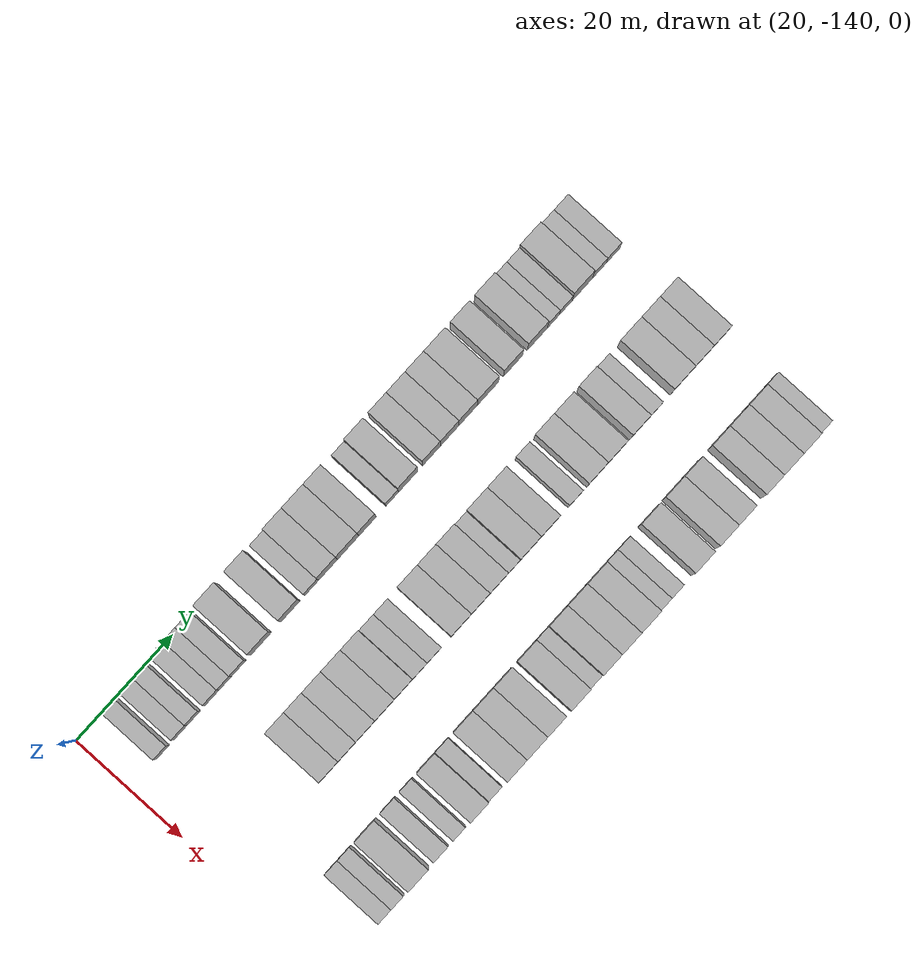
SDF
<sdf version="1.6">
 <world name="default">
  <model name="building_22">
   <static>1</static>
   <pose>25.0000 -132.9320 0 0.000000 0.000000 0.000000</pose>
   <link name="link">
    <pose>0 0 3.00 0 0 0</pose>
    <collision name="collision"><geometry><box><size>10.0000 2.6404 6.0000</size></box></geometry></collision>
    <visual name="visual">
     <cast_shadows>0</cast_shadows>
     <geometry><box><size>10.0000 2.6404 6.0000</size></box></geometry>
     <material>
      <script>
       <uri>model://HANNAS_wall/materials/scripts</uri>
       <uri>model://HANNAS_wall/materials/textures</uri>
       <name>vrc/HANNAS_wall</name>
      </script>
     </material>
    </visual>
   </link>
  </model>
  <model name="building_23">
   <static>1</static>
   <pose>25.0000 -129.2268 0 0.000000 0.000000 0.000000</pose>
   <link name="link">
    <pose>0 0 3.00 0 0 0</pose>
    <collision name="collision"><geometry><box><size>10.0000 2.7701 6.0000</size></box></geometry></collision>
    <visual name="visual">
     <cast_shadows>0</cast_shadows>
     <geometry><box><size>10.0000 2.7701 6.0000</size></box></geometry>
     <material>
      <script>
       <uri>model://HANNAS_wall/materials/scripts</uri>
       <uri>model://HANNAS_wall/materials/textures</uri>
       <name>vrc/HANNAS_wall</name>
      </script>
     </material>
    </visual>
   </link>
  </model>
  <model name="building_24">
   <static>1</static>
   <pose>25.0000 -126.5125 0 0.000000 0.000000 0.000000</pose>
   <link name="link">
    <pose>0 0 3.00 0 0 0</pose>
    <collision name="collision"><geometry><box><size>10.0000 2.6585 6.0000</size></box></geometry></collision>
    <visual name="visual">
     <cast_shadows>0</cast_shadows>
     <geometry><box><size>10.0000 2.6585 6.0000</size></box></geometry>
     <material>
      <script>
       <uri>model://HANNAS_wall/materials/scripts</uri>
       <uri>model://HANNAS_wall/materials/textures</uri>
       <name>vrc/HANNAS_wall</name>
      </script>
     </material>
    </visual>
   </link>
  </model>
  <model name="building_25">
   <static>1</static>
   <pose>25.0000 -122.7348 0 0.000000 0.000000 0.000000</pose>
   <link name="link">
    <pose>0 0 3.00 0 0 0</pose>
    <collision name="collision"><geometry><box><size>10.0000 2.8971 6.0000</size></box></geometry></collision>
    <visual name="visual">
     <cast_shadows>0</cast_shadows>
     <geometry><box><size>10.0000 2.8971 6.0000</size></box></geometry>
     <material>
      <script>
       <uri>model://HANNAS_wall/materials/scripts</uri>
       <uri>model://HANNAS_wall/materials/textures</uri>
       <name>vrc/HANNAS_wall</name>
      </script>
     </material>
    </visual>
   </link>
  </model>
  <model name="building_26">
   <static>1</static>
   <pose>25.0000 -120.0177 0 0.000000 0.000000 0.000000</pose>
   <link name="link">
    <pose>0 0 3.00 0 0 0</pose>
    <collision name="collision"><geometry><box><size>10.0000 2.5370 6.0000</size></box></geometry></collision>
    <visual name="visual">
     <cast_shadows>0</cast_shadows>
     <geometry><box><size>10.0000 2.5370 6.0000</size></box></geometry>
     <material>
      <script>
       <uri>model://HANNAS_wall/materials/scripts</uri>
       <uri>model://HANNAS_wall/materials/textures</uri>
       <name>vrc/HANNAS_wall</name>
      </script>
     </material>
    </visual>
   </link>
  </model>
  <model name="building_27">
   <static>1</static>
   <pose>25.0000 -117.2631 0 0.000000 0.000000 0.000000</pose>
   <link name="link">
    <pose>0 0 3.00 0 0 0</pose>
    <collision name="collision"><geometry><box><size>10.0000 2.9722 6.0000</size></box></geometry></collision>
    <visual name="visual">
     <cast_shadows>0</cast_shadows>
     <geometry><box><size>10.0000 2.9722 6.0000</size></box></geometry>
     <material>
      <script>
       <uri>model://HANNAS_wall/materials/scripts</uri>
       <uri>model://HANNAS_wall/materials/textures</uri>
       <name>vrc/HANNAS_wall</name>
      </script>
     </material>
    </visual>
   </link>
  </model>
  <model name="building_28">
   <static>1</static>
   <pose>25.0000 -112.6516 0 0.000000 0.000000 0.000000</pose>
   <link name="link">
    <pose>0 0 4.50 0 0 0</pose>
    <collision name="collision"><geometry><box><size>10.0000 4.2508 9.0000</size></box></geometry></collision>
    <visual name="visual">
     <cast_shadows>0</cast_shadows>
     <geometry><box><size>10.0000 4.2508 9.0000</size></box></geometry>
     <material>
      <script>
       <uri>model://HANNAS_wall/materials/scripts</uri>
       <uri>model://HANNAS_wall/materials/textures</uri>
       <name>vrc/HANNAS_wall</name>
      </script>
     </material>
    </visual>
   </link>
  </model>
  <model name="building_29">
   <static>1</static>
   <pose>25.0000 -106.5607 0 0.000000 0.000000 0.000000</pose>
   <link name="link">
    <pose>0 0 4.50 0 0 0</pose>
    <collision name="collision"><geometry><box><size>10.0000 3.9310 9.0000</size></box></geometry></collision>
    <visual name="visual">
     <cast_shadows>0</cast_shadows>
     <geometry><box><size>10.0000 3.9310 9.0000</size></box></geometry>
     <material>
      <script>
       <uri>model://HANNAS_wall/materials/scripts</uri>
       <uri>model://HANNAS_wall/materials/textures</uri>
       <name>vrc/HANNAS_wall</name>
      </script>
     </material>
    </visual>
   </link>
  </model>
  <model name="building_30">
   <static>1</static>
   <pose>25.0000 -102.1648 0 0.000000 0.000000 0.000000</pose>
   <link name="link">
    <pose>0 0 3.00 0 0 0</pose>
    <collision name="collision"><geometry><box><size>10.0000 2.8607 6.0000</size></box></geometry></collision>
    <visual name="visual">
     <cast_shadows>0</cast_shadows>
     <geometry><box><size>10.0000 2.8607 6.0000</size></box></geometry>
     <material>
      <script>
       <uri>model://HANNAS_wall/materials/scripts</uri>
       <uri>model://HANNAS_wall/materials/textures</uri>
       <name>vrc/HANNAS_wall</name>
      </script>
     </material>
    </visual>
   </link>
  </model>
  <model name="building_31">
   <static>1</static>
   <pose>25.0000 -98.7727 0 0.000000 0.000000 0.000000</pose>
   <link name="link">
    <pose>0 0 4.50 0 0 0</pose>
    <collision name="collision"><geometry><box><size>10.0000 3.9235 9.0000</size></box></geometry></collision>
    <visual name="visual">
     <cast_shadows>0</cast_shadows>
     <geometry><box><size>10.0000 3.9235 9.0000</size></box></geometry>
     <material>
      <script>
       <uri>model://HANNAS_wall/materials/scripts</uri>
       <uri>model://HANNAS_wall/materials/textures</uri>
       <name>vrc/HANNAS_wall</name>
      </script>
     </material>
    </visual>
   </link>
  </model>
  <model name="building_32">
   <static>1</static>
   <pose>25.0000 -94.6060 0 0.000000 0.000000 0.000000</pose>
   <link name="link">
    <pose>0 0 4.50 0 0 0</pose>
    <collision name="collision"><geometry><box><size>10.0000 4.4098 9.0000</size></box></geometry></collision>
    <visual name="visual">
     <cast_shadows>0</cast_shadows>
     <geometry><box><size>10.0000 4.4098 9.0000</size></box></geometry>
     <material>
      <script>
       <uri>model://HANNAS_wall/materials/scripts</uri>
       <uri>model://HANNAS_wall/materials/textures</uri>
       <name>vrc/HANNAS_wall</name>
      </script>
     </material>
    </visual>
   </link>
  </model>
  <model name="building_33">
   <static>1</static>
   <pose>25.0000 -90.6006 0 0.000000 0.000000 0.000000</pose>
   <link name="link">
    <pose>0 0 4.50 0 0 0</pose>
    <collision name="collision"><geometry><box><size>10.0000 3.6011 9.0000</size></box></geometry></collision>
    <visual name="visual">
     <cast_shadows>0</cast_shadows>
     <geometry><box><size>10.0000 3.6011 9.0000</size></box></geometry>
     <material>
      <script>
       <uri>model://HANNAS_wall/materials/scripts</uri>
       <uri>model://HANNAS_wall/materials/textures</uri>
       <name>vrc/HANNAS_wall</name>
      </script>
     </material>
    </visual>
   </link>
  </model>
  <model name="building_34">
   <static>1</static>
   <pose>25.0000 -85.4847 0 0.000000 0.000000 0.000000</pose>
   <link name="link">
    <pose>0 0 3.00 0 0 0</pose>
    <collision name="collision"><geometry><box><size>10.0000 2.6308 6.0000</size></box></geometry></collision>
    <visual name="visual">
     <cast_shadows>0</cast_shadows>
     <geometry><box><size>10.0000 2.6308 6.0000</size></box></geometry>
     <material>
      <script>
       <uri>model://HANNAS_wall/materials/scripts</uri>
       <uri>model://HANNAS_wall/materials/textures</uri>
       <name>vrc/HANNAS_wall</name>
      </script>
     </material>
    </visual>
   </link>
  </model>
  <model name="building_35">
   <static>1</static>
   <pose>25.0000 -82.1748 0 0.000000 0.000000 0.000000</pose>
   <link name="link">
    <pose>0 0 4.50 0 0 0</pose>
    <collision name="collision"><geometry><box><size>10.0000 3.9889 9.0000</size></box></geometry></collision>
    <visual name="visual">
     <cast_shadows>0</cast_shadows>
     <geometry><box><size>10.0000 3.9889 9.0000</size></box></geometry>
     <material>
      <script>
       <uri>model://HANNAS_wall/materials/scripts</uri>
       <uri>model://HANNAS_wall/materials/textures</uri>
       <name>vrc/HANNAS_wall</name>
      </script>
     </material>
    </visual>
   </link>
  </model>
  <model name="building_36">
   <static>1</static>
   <pose>25.0000 -77.3158 0 0.000000 0.000000 0.000000</pose>
   <link name="link">
    <pose>0 0 4.50 0 0 0</pose>
    <collision name="collision"><geometry><box><size>10.0000 3.7293 9.0000</size></box></geometry></collision>
    <visual name="visual">
     <cast_shadows>0</cast_shadows>
     <geometry><box><size>10.0000 3.7293 9.0000</size></box></geometry>
     <material>
      <script>
       <uri>model://HANNAS_wall/materials/scripts</uri>
       <uri>model://HANNAS_wall/materials/textures</uri>
       <name>vrc/HANNAS_wall</name>
      </script>
     </material>
    </visual>
   </link>
  </model>
  <model name="building_37">
   <static>1</static>
   <pose>25.0000 -73.5388 0 0.000000 0.000000 0.000000</pose>
   <link name="link">
    <pose>0 0 4.50 0 0 0</pose>
    <collision name="collision"><geometry><box><size>10.0000 3.8247 9.0000</size></box></geometry></collision>
    <visual name="visual">
     <cast_shadows>0</cast_shadows>
     <geometry><box><size>10.0000 3.8247 9.0000</size></box></geometry>
     <material>
      <script>
       <uri>model://HANNAS_wall/materials/scripts</uri>
       <uri>model://HANNAS_wall/materials/textures</uri>
       <name>vrc/HANNAS_wall</name>
      </script>
     </material>
    </visual>
   </link>
  </model>
  <model name="building_38">
   <static>1</static>
   <pose>25.0000 -69.7189 0 0.000000 0.000000 0.000000</pose>
   <link name="link">
    <pose>0 0 4.50 0 0 0</pose>
    <collision name="collision"><geometry><box><size>10.0000 3.8150 9.0000</size></box></geometry></collision>
    <visual name="visual">
     <cast_shadows>0</cast_shadows>
     <geometry><box><size>10.0000 3.8150 9.0000</size></box></geometry>
     <material>
      <script>
       <uri>model://HANNAS_wall/materials/scripts</uri>
       <uri>model://HANNAS_wall/materials/textures</uri>
       <name>vrc/HANNAS_wall</name>
      </script>
     </material>
    </visual>
   </link>
  </model>
  <model name="building_39">
   <static>1</static>
   <pose>25.0000 -65.6132 0 0.000000 0.000000 0.000000</pose>
   <link name="link">
    <pose>0 0 4.50 0 0 0</pose>
    <collision name="collision"><geometry><box><size>10.0000 4.3964 9.0000</size></box></geometry></collision>
    <visual name="visual">
     <cast_shadows>0</cast_shadows>
     <geometry><box><size>10.0000 4.3964 9.0000</size></box></geometry>
     <material>
      <script>
       <uri>model://HANNAS_wall/materials/scripts</uri>
       <uri>model://HANNAS_wall/materials/textures</uri>
       <name>vrc/HANNAS_wall</name>
      </script>
     </material>
    </visual>
   </link>
  </model>
  <model name="building_40">
   <static>1</static>
   <pose>25.0000 -60.4220 0 0.000000 0.000000 0.000000</pose>
   <link name="link">
    <pose>0 0 4.50 0 0 0</pose>
    <collision name="collision"><geometry><box><size>10.0000 3.9860 9.0000</size></box></geometry></collision>
    <visual name="visual">
     <cast_shadows>0</cast_shadows>
     <geometry><box><size>10.0000 3.9860 9.0000</size></box></geometry>
     <material>
      <script>
       <uri>model://HANNAS_wall/materials/scripts</uri>
       <uri>model://HANNAS_wall/materials/textures</uri>
       <name>vrc/HANNAS_wall</name>
      </script>
     </material>
    </visual>
   </link>
  </model>
  <model name="building_41">
   <static>1</static>
   <pose>25.0000 -55.3377 0 0.000000 0.000000 0.000000</pose>
   <link name="link">
    <pose>0 0 4.50 0 0 0</pose>
    <collision name="collision"><geometry><box><size>10.0000 4.1826 9.0000</size></box></geometry></collision>
    <visual name="visual">
     <cast_shadows>0</cast_shadows>
     <geometry><box><size>10.0000 4.1826 9.0000</size></box></geometry>
     <material>
      <script>
       <uri>model://HANNAS_wall/materials/scripts</uri>
       <uri>model://HANNAS_wall/materials/textures</uri>
       <name>vrc/HANNAS_wall</name>
      </script>
     </material>
    </visual>
   </link>
  </model>
  <model name="building_42">
   <static>1</static>
   <pose>25.0000 -52.0034 0 0.000000 0.000000 0.000000</pose>
   <link name="link">
    <pose>0 0 3.00 0 0 0</pose>
    <collision name="collision"><geometry><box><size>10.0000 2.4860 6.0000</size></box></geometry></collision>
    <visual name="visual">
     <cast_shadows>0</cast_shadows>
     <geometry><box><size>10.0000 2.4860 6.0000</size></box></geometry>
     <material>
      <script>
       <uri>model://HANNAS_wall/materials/scripts</uri>
       <uri>model://HANNAS_wall/materials/textures</uri>
       <name>vrc/HANNAS_wall</name>
      </script>
     </material>
    </visual>
   </link>
  </model>
  <model name="building_43">
   <static>1</static>
   <pose>25.0000 -49.4311 0 0.000000 0.000000 0.000000</pose>
   <link name="link">
    <pose>0 0 3.00 0 0 0</pose>
    <collision name="collision"><geometry><box><size>10.0000 2.6586 6.0000</size></box></geometry></collision>
    <visual name="visual">
     <cast_shadows>0</cast_shadows>
     <geometry><box><size>10.0000 2.6586 6.0000</size></box></geometry>
     <material>
      <script>
       <uri>model://HANNAS_wall/materials/scripts</uri>
       <uri>model://HANNAS_wall/materials/textures</uri>
       <name>vrc/HANNAS_wall</name>
      </script>
     </material>
    </visual>
   </link>
  </model>
  <model name="building_44">
   <static>1</static>
   <pose>25.0000 -45.9772 0 0.000000 0.000000 0.000000</pose>
   <link name="link">
    <pose>0 0 4.50 0 0 0</pose>
    <collision name="collision"><geometry><box><size>10.0000 4.2492 9.0000</size></box></geometry></collision>
    <visual name="visual">
     <cast_shadows>0</cast_shadows>
     <geometry><box><size>10.0000 4.2492 9.0000</size></box></geometry>
     <material>
      <script>
       <uri>model://HANNAS_wall/materials/scripts</uri>
       <uri>model://HANNAS_wall/materials/textures</uri>
       <name>vrc/HANNAS_wall</name>
      </script>
     </material>
    </visual>
   </link>
  </model>
  <model name="building_45">
   <static>1</static>
   <pose>25.0000 -42.4300 0 0.000000 0.000000 0.000000</pose>
   <link name="link">
    <pose>0 0 3.00 0 0 0</pose>
    <collision name="collision"><geometry><box><size>10.0000 2.8452 6.0000</size></box></geometry></collision>
    <visual name="visual">
     <cast_shadows>0</cast_shadows>
     <geometry><box><size>10.0000 2.8452 6.0000</size></box></geometry>
     <material>
      <script>
       <uri>model://HANNAS_wall/materials/scripts</uri>
       <uri>model://HANNAS_wall/materials/textures</uri>
       <name>vrc/HANNAS_wall</name>
      </script>
     </material>
    </visual>
   </link>
  </model>
  <model name="building_46">
   <static>1</static>
   <pose>25.0000 -39.5504 0 0.000000 0.000000 0.000000</pose>
   <link name="link">
    <pose>0 0 3.00 0 0 0</pose>
    <collision name="collision"><geometry><box><size>10.0000 2.9141 6.0000</size></box></geometry></collision>
    <visual name="visual">
     <cast_shadows>0</cast_shadows>
     <geometry><box><size>10.0000 2.9141 6.0000</size></box></geometry>
     <material>
      <script>
       <uri>model://HANNAS_wall/materials/scripts</uri>
       <uri>model://HANNAS_wall/materials/textures</uri>
       <name>vrc/HANNAS_wall</name>
      </script>
     </material>
    </visual>
   </link>
  </model>
  <model name="building_142">
   <static>1</static>
   <pose>44.0000 -119.1701 0 0.000000 0.000000 0.000000</pose>
   <link name="link">
    <pose>0 0 4.50 0 0 0</pose>
    <collision name="collision"><geometry><box><size>10.0000 3.8583 9.0000</size></box></geometry></collision>
    <visual name="visual">
     <cast_shadows>0</cast_shadows>
     <geometry><box><size>10.0000 3.8583 9.0000</size></box></geometry>
     <material>
      <script>
       <uri>model://HANNAS_wall/materials/scripts</uri>
       <uri>model://HANNAS_wall/materials/textures</uri>
       <name>vrc/HANNAS_wall</name>
      </script>
     </material>
    </visual>
   </link>
  </model>
  <model name="building_143">
   <static>1</static>
   <pose>44.0000 -115.4315 0 0.000000 0.000000 0.000000</pose>
   <link name="link">
    <pose>0 0 4.50 0 0 0</pose>
    <collision name="collision"><geometry><box><size>10.0000 3.6190 9.0000</size></box></geometry></collision>
    <visual name="visual">
     <cast_shadows>0</cast_shadows>
     <geometry><box><size>10.0000 3.6190 9.0000</size></box></geometry>
     <material>
      <script>
       <uri>model://HANNAS_wall/materials/scripts</uri>
       <uri>model://HANNAS_wall/materials/textures</uri>
       <name>vrc/HANNAS_wall</name>
      </script>
     </material>
    </visual>
   </link>
  </model>
  <model name="building_144">
   <static>1</static>
   <pose>44.0000 -111.6917 0 0.000000 0.000000 0.000000</pose>
   <link name="link">
    <pose>0 0 4.50 0 0 0</pose>
    <collision name="collision"><geometry><box><size>10.0000 3.8605 9.0000</size></box></geometry></collision>
    <visual name="visual">
     <cast_shadows>0</cast_shadows>
     <geometry><box><size>10.0000 3.8605 9.0000</size></box></geometry>
     <material>
      <script>
       <uri>model://HANNAS_wall/materials/scripts</uri>
       <uri>model://HANNAS_wall/materials/textures</uri>
       <name>vrc/HANNAS_wall</name>
      </script>
     </material>
    </visual>
   </link>
  </model>
  <model name="building_145">
   <static>1</static>
   <pose>44.0000 -107.7535 0 0.000000 0.000000 0.000000</pose>
   <link name="link">
    <pose>0 0 4.50 0 0 0</pose>
    <collision name="collision"><geometry><box><size>10.0000 4.0160 9.0000</size></box></geometry></collision>
    <visual name="visual">
     <cast_shadows>0</cast_shadows>
     <geometry><box><size>10.0000 4.0160 9.0000</size></box></geometry>
     <material>
      <script>
       <uri>model://HANNAS_wall/materials/scripts</uri>
       <uri>model://HANNAS_wall/materials/textures</uri>
       <name>vrc/HANNAS_wall</name>
      </script>
     </material>
    </visual>
   </link>
  </model>
  <model name="building_146">
   <static>1</static>
   <pose>44.0000 -103.9223 0 0.000000 0.000000 0.000000</pose>
   <link name="link">
    <pose>0 0 4.50 0 0 0</pose>
    <collision name="collision"><geometry><box><size>10.0000 3.6464 9.0000</size></box></geometry></collision>
    <visual name="visual">
     <cast_shadows>0</cast_shadows>
     <geometry><box><size>10.0000 3.6464 9.0000</size></box></geometry>
     <material>
      <script>
       <uri>model://HANNAS_wall/materials/scripts</uri>
       <uri>model://HANNAS_wall/materials/textures</uri>
       <name>vrc/HANNAS_wall</name>
      </script>
     </material>
    </visual>
   </link>
  </model>
  <model name="building_147">
   <static>1</static>
   <pose>44.0000 -100.6152 0 0.000000 0.000000 0.000000</pose>
   <link name="link">
    <pose>0 0 3.00 0 0 0</pose>
    <collision name="collision"><geometry><box><size>10.0000 2.9677 6.0000</size></box></geometry></collision>
    <visual name="visual">
     <cast_shadows>0</cast_shadows>
     <geometry><box><size>10.0000 2.9677 6.0000</size></box></geometry>
     <material>
      <script>
       <uri>model://HANNAS_wall/materials/scripts</uri>
       <uri>model://HANNAS_wall/materials/textures</uri>
       <name>vrc/HANNAS_wall</name>
      </script>
     </material>
    </visual>
   </link>
  </model>
  <model name="building_148">
   <static>1</static>
   <pose>44.0000 -97.6734 0 0.000000 0.000000 0.000000</pose>
   <link name="link">
    <pose>0 0 3.00 0 0 0</pose>
    <collision name="collision"><geometry><box><size>10.0000 2.9159 6.0000</size></box></geometry></collision>
    <visual name="visual">
     <cast_shadows>0</cast_shadows>
     <geometry><box><size>10.0000 2.9159 6.0000</size></box></geometry>
     <material>
      <script>
       <uri>model://HANNAS_wall/materials/scripts</uri>
       <uri>model://HANNAS_wall/materials/textures</uri>
       <name>vrc/HANNAS_wall</name>
      </script>
     </material>
    </visual>
   </link>
  </model>
  <model name="building_149">
   <static>1</static>
   <pose>44.0000 -92.1470 0 0.000000 0.000000 0.000000</pose>
   <link name="link">
    <pose>0 0 4.50 0 0 0</pose>
    <collision name="collision"><geometry><box><size>10.0000 4.1369 9.0000</size></box></geometry></collision>
    <visual name="visual">
     <cast_shadows>0</cast_shadows>
     <geometry><box><size>10.0000 4.1369 9.0000</size></box></geometry>
     <material>
      <script>
       <uri>model://HANNAS_wall/materials/scripts</uri>
       <uri>model://HANNAS_wall/materials/textures</uri>
       <name>vrc/HANNAS_wall</name>
      </script>
     </material>
    </visual>
   </link>
  </model>
  <model name="building_150">
   <static>1</static>
   <pose>44.0000 -88.1755 0 0.000000 0.000000 0.000000</pose>
   <link name="link">
    <pose>0 0 4.50 0 0 0</pose>
    <collision name="collision"><geometry><box><size>10.0000 3.8061 9.0000</size></box></geometry></collision>
    <visual name="visual">
     <cast_shadows>0</cast_shadows>
     <geometry><box><size>10.0000 3.8061 9.0000</size></box></geometry>
     <material>
      <script>
       <uri>model://HANNAS_wall/materials/scripts</uri>
       <uri>model://HANNAS_wall/materials/textures</uri>
       <name>vrc/HANNAS_wall</name>
      </script>
     </material>
    </visual>
   </link>
  </model>
  <model name="building_151">
   <static>1</static>
   <pose>44.0000 -84.3957 0 0.000000 0.000000 0.000000</pose>
   <link name="link">
    <pose>0 0 4.50 0 0 0</pose>
    <collision name="collision"><geometry><box><size>10.0000 3.7534 9.0000</size></box></geometry></collision>
    <visual name="visual">
     <cast_shadows>0</cast_shadows>
     <geometry><box><size>10.0000 3.7534 9.0000</size></box></geometry>
     <material>
      <script>
       <uri>model://HANNAS_wall/materials/scripts</uri>
       <uri>model://HANNAS_wall/materials/textures</uri>
       <name>vrc/HANNAS_wall</name>
      </script>
     </material>
    </visual>
   </link>
  </model>
  <model name="building_152">
   <static>1</static>
   <pose>44.0000 -81.2618 0 0.000000 0.000000 0.000000</pose>
   <link name="link">
    <pose>0 0 3.00 0 0 0</pose>
    <collision name="collision"><geometry><box><size>10.0000 2.5145 6.0000</size></box></geometry></collision>
    <visual name="visual">
     <cast_shadows>0</cast_shadows>
     <geometry><box><size>10.0000 2.5145 6.0000</size></box></geometry>
     <material>
      <script>
       <uri>model://HANNAS_wall/materials/scripts</uri>
       <uri>model://HANNAS_wall/materials/textures</uri>
       <name>vrc/HANNAS_wall</name>
      </script>
     </material>
    </visual>
   </link>
  </model>
  <model name="building_153">
   <static>1</static>
   <pose>44.0000 -77.8986 0 0.000000 0.000000 0.000000</pose>
   <link name="link">
    <pose>0 0 4.50 0 0 0</pose>
    <collision name="collision"><geometry><box><size>10.0000 4.2119 9.0000</size></box></geometry></collision>
    <visual name="visual">
     <cast_shadows>0</cast_shadows>
     <geometry><box><size>10.0000 4.2119 9.0000</size></box></geometry>
     <material>
      <script>
       <uri>model://HANNAS_wall/materials/scripts</uri>
       <uri>model://HANNAS_wall/materials/textures</uri>
       <name>vrc/HANNAS_wall</name>
      </script>
     </material>
    </visual>
   </link>
  </model>
  <model name="building_154">
   <static>1</static>
   <pose>44.0000 -73.8440 0 0.000000 0.000000 0.000000</pose>
   <link name="link">
    <pose>0 0 4.50 0 0 0</pose>
    <collision name="collision"><geometry><box><size>10.0000 3.8972 9.0000</size></box></geometry></collision>
    <visual name="visual">
     <cast_shadows>0</cast_shadows>
     <geometry><box><size>10.0000 3.8972 9.0000</size></box></geometry>
     <material>
      <script>
       <uri>model://HANNAS_wall/materials/scripts</uri>
       <uri>model://HANNAS_wall/materials/textures</uri>
       <name>vrc/HANNAS_wall</name>
      </script>
     </material>
    </visual>
   </link>
  </model>
  <model name="building_155">
   <static>1</static>
   <pose>44.0000 -68.4730 0 0.000000 0.000000 0.000000</pose>
   <link name="link">
    <pose>0 0 3.00 0 0 0</pose>
    <collision name="collision"><geometry><box><size>10.0000 2.8447 6.0000</size></box></geometry></collision>
    <visual name="visual">
     <cast_shadows>0</cast_shadows>
     <geometry><box><size>10.0000 2.8447 6.0000</size></box></geometry>
     <material>
      <script>
       <uri>model://HANNAS_wall/materials/scripts</uri>
       <uri>model://HANNAS_wall/materials/textures</uri>
       <name>vrc/HANNAS_wall</name>
      </script>
     </material>
    </visual>
   </link>
  </model>
  <model name="building_156">
   <static>1</static>
   <pose>44.0000 -64.0850 0 0.000000 0.000000 0.000000</pose>
   <link name="link">
    <pose>0 0 4.50 0 0 0</pose>
    <collision name="collision"><geometry><box><size>10.0000 3.9313 9.0000</size></box></geometry></collision>
    <visual name="visual">
     <cast_shadows>0</cast_shadows>
     <geometry><box><size>10.0000 3.9313 9.0000</size></box></geometry>
     <material>
      <script>
       <uri>model://HANNAS_wall/materials/scripts</uri>
       <uri>model://HANNAS_wall/materials/textures</uri>
       <name>vrc/HANNAS_wall</name>
      </script>
     </material>
    </visual>
   </link>
  </model>
  <model name="building_157">
   <static>1</static>
   <pose>44.0000 -60.1149 0 0.000000 0.000000 0.000000</pose>
   <link name="link">
    <pose>0 0 4.50 0 0 0</pose>
    <collision name="collision"><geometry><box><size>10.0000 4.0088 9.0000</size></box></geometry></collision>
    <visual name="visual">
     <cast_shadows>0</cast_shadows>
     <geometry><box><size>10.0000 4.0088 9.0000</size></box></geometry>
     <material>
      <script>
       <uri>model://HANNAS_wall/materials/scripts</uri>
       <uri>model://HANNAS_wall/materials/textures</uri>
       <name>vrc/HANNAS_wall</name>
      </script>
     </material>
    </visual>
   </link>
  </model>
  <model name="building_158">
   <static>1</static>
   <pose>44.0000 -55.2548 0 0.000000 0.000000 0.000000</pose>
   <link name="link">
    <pose>0 0 4.50 0 0 0</pose>
    <collision name="collision"><geometry><box><size>10.0000 3.7113 9.0000</size></box></geometry></collision>
    <visual name="visual">
     <cast_shadows>0</cast_shadows>
     <geometry><box><size>10.0000 3.7113 9.0000</size></box></geometry>
     <material>
      <script>
       <uri>model://HANNAS_wall/materials/scripts</uri>
       <uri>model://HANNAS_wall/materials/textures</uri>
       <name>vrc/HANNAS_wall</name>
      </script>
     </material>
    </visual>
   </link>
  </model>
  <model name="building_159">
   <static>1</static>
   <pose>44.0000 -52.0135 0 0.000000 0.000000 0.000000</pose>
   <link name="link">
    <pose>0 0 3.00 0 0 0</pose>
    <collision name="collision"><geometry><box><size>10.0000 2.7713 6.0000</size></box></geometry></collision>
    <visual name="visual">
     <cast_shadows>0</cast_shadows>
     <geometry><box><size>10.0000 2.7713 6.0000</size></box></geometry>
     <material>
      <script>
       <uri>model://HANNAS_wall/materials/scripts</uri>
       <uri>model://HANNAS_wall/materials/textures</uri>
       <name>vrc/HANNAS_wall</name>
      </script>
     </material>
    </visual>
   </link>
  </model>
  <model name="building_160">
   <static>1</static>
   <pose>44.0000 -46.4480 0 0.000000 0.000000 0.000000</pose>
   <link name="link">
    <pose>0 0 4.50 0 0 0</pose>
    <collision name="collision"><geometry><box><size>10.0000 4.3597 9.0000</size></box></geometry></collision>
    <visual name="visual">
     <cast_shadows>0</cast_shadows>
     <geometry><box><size>10.0000 4.3597 9.0000</size></box></geometry>
     <material>
      <script>
       <uri>model://HANNAS_wall/materials/scripts</uri>
       <uri>model://HANNAS_wall/materials/textures</uri>
       <name>vrc/HANNAS_wall</name>
      </script>
     </material>
    </visual>
   </link>
  </model>
  <model name="building_161">
   <static>1</static>
   <pose>44.0000 -42.3795 0 0.000000 0.000000 0.000000</pose>
   <link name="link">
    <pose>0 0 4.50 0 0 0</pose>
    <collision name="collision"><geometry><box><size>10.0000 3.7773 9.0000</size></box></geometry></collision>
    <visual name="visual">
     <cast_shadows>0</cast_shadows>
     <geometry><box><size>10.0000 3.7773 9.0000</size></box></geometry>
     <material>
      <script>
       <uri>model://HANNAS_wall/materials/scripts</uri>
       <uri>model://HANNAS_wall/materials/textures</uri>
       <name>vrc/HANNAS_wall</name>
      </script>
     </material>
    </visual>
   </link>
  </model>
  <model name="building_162">
   <static>1</static>
   <pose>44.0000 -38.6741 0 0.000000 0.000000 0.000000</pose>
   <link name="link">
    <pose>0 0 4.50 0 0 0</pose>
    <collision name="collision"><geometry><box><size>10.0000 3.6334 9.0000</size></box></geometry></collision>
    <visual name="visual">
     <cast_shadows>0</cast_shadows>
     <geometry><box><size>10.0000 3.6334 9.0000</size></box></geometry>
     <material>
      <script>
       <uri>model://HANNAS_wall/materials/scripts</uri>
       <uri>model://HANNAS_wall/materials/textures</uri>
       <name>vrc/HANNAS_wall</name>
      </script>
     </material>
    </visual>
   </link>
  </model>
  <model name="building_258">
   <static>1</static>
   <pose>63.0000 -128.8015 0 0.000000 0.000000 0.000000</pose>
   <link name="link">
    <pose>0 0 3.00 0 0 0</pose>
    <collision name="collision"><geometry><box><size>10.0000 2.6761 6.0000</size></box></geometry></collision>
    <visual name="visual">
     <cast_shadows>0</cast_shadows>
     <geometry><box><size>10.0000 2.6761 6.0000</size></box></geometry>
     <material>
      <script>
       <uri>model://HANNAS_wall/materials/scripts</uri>
       <uri>model://HANNAS_wall/materials/textures</uri>
       <name>vrc/HANNAS_wall</name>
      </script>
     </material>
    </visual>
   </link>
  </model>
  <model name="building_259">
   <static>1</static>
   <pose>63.0000 -126.2078 0 0.000000 0.000000 0.000000</pose>
   <link name="link">
    <pose>0 0 3.00 0 0 0</pose>
    <collision name="collision"><geometry><box><size>10.0000 2.5111 6.0000</size></box></geometry></collision>
    <visual name="visual">
     <cast_shadows>0</cast_shadows>
     <geometry><box><size>10.0000 2.5111 6.0000</size></box></geometry>
     <material>
      <script>
       <uri>model://HANNAS_wall/materials/scripts</uri>
       <uri>model://HANNAS_wall/materials/textures</uri>
       <name>vrc/HANNAS_wall</name>
      </script>
     </material>
    </visual>
   </link>
  </model>
  <model name="building_260">
   <static>1</static>
   <pose>63.0000 -121.8820 0 0.000000 0.000000 0.000000</pose>
   <link name="link">
    <pose>0 0 4.50 0 0 0</pose>
    <collision name="collision"><geometry><box><size>10.0000 4.1406 9.0000</size></box></geometry></collision>
    <visual name="visual">
     <cast_shadows>0</cast_shadows>
     <geometry><box><size>10.0000 4.1406 9.0000</size></box></geometry>
     <material>
      <script>
       <uri>model://HANNAS_wall/materials/scripts</uri>
       <uri>model://HANNAS_wall/materials/textures</uri>
       <name>vrc/HANNAS_wall</name>
      </script>
     </material>
    </visual>
   </link>
  </model>
  <model name="building_261">
   <static>1</static>
   <pose>63.0000 -117.3207 0 0.000000 0.000000 0.000000</pose>
   <link name="link">
    <pose>0 0 3.00 0 0 0</pose>
    <collision name="collision"><geometry><box><size>10.0000 2.9820 6.0000</size></box></geometry></collision>
    <visual name="visual">
     <cast_shadows>0</cast_shadows>
     <geometry><box><size>10.0000 2.9820 6.0000</size></box></geometry>
     <material>
      <script>
       <uri>model://HANNAS_wall/materials/scripts</uri>
       <uri>model://HANNAS_wall/materials/textures</uri>
       <name>vrc/HANNAS_wall</name>
      </script>
     </material>
    </visual>
   </link>
  </model>
  <model name="building_262">
   <static>1</static>
   <pose>63.0000 -113.5526 0 0.000000 0.000000 0.000000</pose>
   <link name="link">
    <pose>0 0 3.00 0 0 0</pose>
    <collision name="collision"><geometry><box><size>10.0000 2.5543 6.0000</size></box></geometry></collision>
    <visual name="visual">
     <cast_shadows>0</cast_shadows>
     <geometry><box><size>10.0000 2.5543 6.0000</size></box></geometry>
     <material>
      <script>
       <uri>model://HANNAS_wall/materials/scripts</uri>
       <uri>model://HANNAS_wall/materials/textures</uri>
       <name>vrc/HANNAS_wall</name>
      </script>
     </material>
    </visual>
   </link>
  </model>
  <model name="building_263">
   <static>1</static>
   <pose>63.0000 -109.3965 0 0.000000 0.000000 0.000000</pose>
   <link name="link">
    <pose>0 0 4.50 0 0 0</pose>
    <collision name="collision"><geometry><box><size>10.0000 3.7579 9.0000</size></box></geometry></collision>
    <visual name="visual">
     <cast_shadows>0</cast_shadows>
     <geometry><box><size>10.0000 3.7579 9.0000</size></box></geometry>
     <material>
      <script>
       <uri>model://HANNAS_wall/materials/scripts</uri>
       <uri>model://HANNAS_wall/materials/textures</uri>
       <name>vrc/HANNAS_wall</name>
      </script>
     </material>
    </visual>
   </link>
  </model>
  <model name="building_264">
   <static>1</static>
   <pose>63.0000 -106.1515 0 0.000000 0.000000 0.000000</pose>
   <link name="link">
    <pose>0 0 3.00 0 0 0</pose>
    <collision name="collision"><geometry><box><size>10.0000 2.7320 6.0000</size></box></geometry></collision>
    <visual name="visual">
     <cast_shadows>0</cast_shadows>
     <geometry><box><size>10.0000 2.7320 6.0000</size></box></geometry>
     <material>
      <script>
       <uri>model://HANNAS_wall/materials/scripts</uri>
       <uri>model://HANNAS_wall/materials/textures</uri>
       <name>vrc/HANNAS_wall</name>
      </script>
     </material>
    </visual>
   </link>
  </model>
  <model name="building_265">
   <static>1</static>
   <pose>63.0000 -101.7500 0 0.000000 0.000000 0.000000</pose>
   <link name="link">
    <pose>0 0 4.50 0 0 0</pose>
    <collision name="collision"><geometry><box><size>10.0000 4.0712 9.0000</size></box></geometry></collision>
    <visual name="visual">
     <cast_shadows>0</cast_shadows>
     <geometry><box><size>10.0000 4.0712 9.0000</size></box></geometry>
     <material>
      <script>
       <uri>model://HANNAS_wall/materials/scripts</uri>
       <uri>model://HANNAS_wall/materials/textures</uri>
       <name>vrc/HANNAS_wall</name>
      </script>
     </material>
    </visual>
   </link>
  </model>
  <model name="building_266">
   <static>1</static>
   <pose>63.0000 -97.6245 0 0.000000 0.000000 0.000000</pose>
   <link name="link">
    <pose>0 0 4.50 0 0 0</pose>
    <collision name="collision"><geometry><box><size>10.0000 4.1798 9.0000</size></box></geometry></collision>
    <visual name="visual">
     <cast_shadows>0</cast_shadows>
     <geometry><box><size>10.0000 4.1798 9.0000</size></box></geometry>
     <material>
      <script>
       <uri>model://HANNAS_wall/materials/scripts</uri>
       <uri>model://HANNAS_wall/materials/textures</uri>
       <name>vrc/HANNAS_wall</name>
      </script>
     </material>
    </visual>
   </link>
  </model>
  <model name="building_267">
   <static>1</static>
   <pose>63.0000 -93.6269 0 0.000000 0.000000 0.000000</pose>
   <link name="link">
    <pose>0 0 4.50 0 0 0</pose>
    <collision name="collision"><geometry><box><size>10.0000 3.8154 9.0000</size></box></geometry></collision>
    <visual name="visual">
     <cast_shadows>0</cast_shadows>
     <geometry><box><size>10.0000 3.8154 9.0000</size></box></geometry>
     <material>
      <script>
       <uri>model://HANNAS_wall/materials/scripts</uri>
       <uri>model://HANNAS_wall/materials/textures</uri>
       <name>vrc/HANNAS_wall</name>
      </script>
     </material>
    </visual>
   </link>
  </model>
  <model name="building_268">
   <static>1</static>
   <pose>63.0000 -88.7117 0 0.000000 0.000000 0.000000</pose>
   <link name="link">
    <pose>0 0 4.50 0 0 0</pose>
    <collision name="collision"><geometry><box><size>10.0000 4.0148 9.0000</size></box></geometry></collision>
    <visual name="visual">
     <cast_shadows>0</cast_shadows>
     <geometry><box><size>10.0000 4.0148 9.0000</size></box></geometry>
     <material>
      <script>
       <uri>model://HANNAS_wall/materials/scripts</uri>
       <uri>model://HANNAS_wall/materials/textures</uri>
       <name>vrc/HANNAS_wall</name>
      </script>
     </material>
    </visual>
   </link>
  </model>
  <model name="building_269">
   <static>1</static>
   <pose>63.0000 -85.4565 0 0.000000 0.000000 0.000000</pose>
   <link name="link">
    <pose>0 0 3.00 0 0 0</pose>
    <collision name="collision"><geometry><box><size>10.0000 2.4957 6.0000</size></box></geometry></collision>
    <visual name="visual">
     <cast_shadows>0</cast_shadows>
     <geometry><box><size>10.0000 2.4957 6.0000</size></box></geometry>
     <material>
      <script>
       <uri>model://HANNAS_wall/materials/scripts</uri>
       <uri>model://HANNAS_wall/materials/textures</uri>
       <name>vrc/HANNAS_wall</name>
      </script>
     </material>
    </visual>
   </link>
  </model>
  <model name="building_270">
   <static>1</static>
   <pose>63.0000 -82.2836 0 0.000000 0.000000 0.000000</pose>
   <link name="link">
    <pose>0 0 4.50 0 0 0</pose>
    <collision name="collision"><geometry><box><size>10.0000 3.8500 9.0000</size></box></geometry></collision>
    <visual name="visual">
     <cast_shadows>0</cast_shadows>
     <geometry><box><size>10.0000 3.8500 9.0000</size></box></geometry>
     <material>
      <script>
       <uri>model://HANNAS_wall/materials/scripts</uri>
       <uri>model://HANNAS_wall/materials/textures</uri>
       <name>vrc/HANNAS_wall</name>
      </script>
     </material>
    </visual>
   </link>
  </model>
  <model name="building_271">
   <static>1</static>
   <pose>63.0000 -78.3593 0 0.000000 0.000000 0.000000</pose>
   <link name="link">
    <pose>0 0 4.50 0 0 0</pose>
    <collision name="collision"><geometry><box><size>10.0000 3.9987 9.0000</size></box></geometry></collision>
    <visual name="visual">
     <cast_shadows>0</cast_shadows>
     <geometry><box><size>10.0000 3.9987 9.0000</size></box></geometry>
     <material>
      <script>
       <uri>model://HANNAS_wall/materials/scripts</uri>
       <uri>model://HANNAS_wall/materials/textures</uri>
       <name>vrc/HANNAS_wall</name>
      </script>
     </material>
    </visual>
   </link>
  </model>
  <model name="building_272">
   <static>1</static>
   <pose>63.0000 -74.3497 0 0.000000 0.000000 0.000000</pose>
   <link name="link">
    <pose>0 0 4.50 0 0 0</pose>
    <collision name="collision"><geometry><box><size>10.0000 4.0205 9.0000</size></box></geometry></collision>
    <visual name="visual">
     <cast_shadows>0</cast_shadows>
     <geometry><box><size>10.0000 4.0205 9.0000</size></box></geometry>
     <material>
      <script>
       <uri>model://HANNAS_wall/materials/scripts</uri>
       <uri>model://HANNAS_wall/materials/textures</uri>
       <name>vrc/HANNAS_wall</name>
      </script>
     </material>
    </visual>
   </link>
  </model>
  <model name="building_273">
   <static>1</static>
   <pose>63.0000 -71.1349 0 0.000000 0.000000 0.000000</pose>
   <link name="link">
    <pose>0 0 3.00 0 0 0</pose>
    <collision name="collision"><geometry><box><size>10.0000 2.4091 6.0000</size></box></geometry></collision>
    <visual name="visual">
     <cast_shadows>0</cast_shadows>
     <geometry><box><size>10.0000 2.4091 6.0000</size></box></geometry>
     <material>
      <script>
       <uri>model://HANNAS_wall/materials/scripts</uri>
       <uri>model://HANNAS_wall/materials/textures</uri>
       <name>vrc/HANNAS_wall</name>
      </script>
     </material>
    </visual>
   </link>
  </model>
  <model name="building_274">
   <static>1</static>
   <pose>63.0000 -68.6681 0 0.000000 0.000000 0.000000</pose>
   <link name="link">
    <pose>0 0 3.00 0 0 0</pose>
    <collision name="collision"><geometry><box><size>10.0000 2.5245 6.0000</size></box></geometry></collision>
    <visual name="visual">
     <cast_shadows>0</cast_shadows>
     <geometry><box><size>10.0000 2.5245 6.0000</size></box></geometry>
     <material>
      <script>
       <uri>model://HANNAS_wall/materials/scripts</uri>
       <uri>model://HANNAS_wall/materials/textures</uri>
       <name>vrc/HANNAS_wall</name>
      </script>
     </material>
    </visual>
   </link>
  </model>
  <model name="building_275">
   <static>1</static>
   <pose>63.0000 -63.3955 0 0.000000 0.000000 0.000000</pose>
   <link name="link">
    <pose>0 0 4.50 0 0 0</pose>
    <collision name="collision"><geometry><box><size>10.0000 4.0207 9.0000</size></box></geometry></collision>
    <visual name="visual">
     <cast_shadows>0</cast_shadows>
     <geometry><box><size>10.0000 4.0207 9.0000</size></box></geometry>
     <material>
      <script>
       <uri>model://HANNAS_wall/materials/scripts</uri>
       <uri>model://HANNAS_wall/materials/textures</uri>
       <name>vrc/HANNAS_wall</name>
      </script>
     </material>
    </visual>
   </link>
  </model>
  <model name="building_276">
   <static>1</static>
   <pose>63.0000 -58.4533 0 0.000000 0.000000 0.000000</pose>
   <link name="link">
    <pose>0 0 4.50 0 0 0</pose>
    <collision name="collision"><geometry><box><size>10.0000 3.8637 9.0000</size></box></geometry></collision>
    <visual name="visual">
     <cast_shadows>0</cast_shadows>
     <geometry><box><size>10.0000 3.8637 9.0000</size></box></geometry>
     <material>
      <script>
       <uri>model://HANNAS_wall/materials/scripts</uri>
       <uri>model://HANNAS_wall/materials/textures</uri>
       <name>vrc/HANNAS_wall</name>
      </script>
     </material>
    </visual>
   </link>
  </model>
  <model name="building_277">
   <static>1</static>
   <pose>63.0000 -54.7079 0 0.000000 0.000000 0.000000</pose>
   <link name="link">
    <pose>0 0 4.50 0 0 0</pose>
    <collision name="collision"><geometry><box><size>10.0000 3.6271 9.0000</size></box></geometry></collision>
    <visual name="visual">
     <cast_shadows>0</cast_shadows>
     <geometry><box><size>10.0000 3.6271 9.0000</size></box></geometry>
     <material>
      <script>
       <uri>model://HANNAS_wall/materials/scripts</uri>
       <uri>model://HANNAS_wall/materials/textures</uri>
       <name>vrc/HANNAS_wall</name>
      </script>
     </material>
    </visual>
   </link>
  </model>
  <model name="building_278">
   <static>1</static>
   <pose>63.0000 -49.0745 0 0.000000 0.000000 0.000000</pose>
   <link name="link">
    <pose>0 0 4.50 0 0 0</pose>
    <collision name="collision"><geometry><box><size>10.0000 3.6397 9.0000</size></box></geometry></collision>
    <visual name="visual">
     <cast_shadows>0</cast_shadows>
     <geometry><box><size>10.0000 3.6397 9.0000</size></box></geometry>
     <material>
      <script>
       <uri>model://HANNAS_wall/materials/scripts</uri>
       <uri>model://HANNAS_wall/materials/textures</uri>
       <name>vrc/HANNAS_wall</name>
      </script>
     </material>
    </visual>
   </link>
  </model>
  <model name="building_279">
   <static>1</static>
   <pose>63.0000 -45.2758 0 0.000000 0.000000 0.000000</pose>
   <link name="link">
    <pose>0 0 4.50 0 0 0</pose>
    <collision name="collision"><geometry><box><size>10.0000 3.9577 9.0000</size></box></geometry></collision>
    <visual name="visual">
     <cast_shadows>0</cast_shadows>
     <geometry><box><size>10.0000 3.9577 9.0000</size></box></geometry>
     <material>
      <script>
       <uri>model://HANNAS_wall/materials/scripts</uri>
       <uri>model://HANNAS_wall/materials/textures</uri>
       <name>vrc/HANNAS_wall</name>
      </script>
     </material>
    </visual>
   </link>
  </model>
  <model name="building_280">
   <static>1</static>
   <pose>63.0000 -41.4316 0 0.000000 0.000000 0.000000</pose>
   <link name="link">
    <pose>0 0 4.50 0 0 0</pose>
    <collision name="collision"><geometry><box><size>10.0000 3.7308 9.0000</size></box></geometry></collision>
    <visual name="visual">
     <cast_shadows>0</cast_shadows>
     <geometry><box><size>10.0000 3.7308 9.0000</size></box></geometry>
     <material>
      <script>
       <uri>model://HANNAS_wall/materials/scripts</uri>
       <uri>model://HANNAS_wall/materials/textures</uri>
       <name>vrc/HANNAS_wall</name>
      </script>
     </material>
    </visual>
   </link>
  </model>
  <model name="building_281">
   <static>1</static>
   <pose>63.0000 -38.2275 0 0.000000 0.000000 0.000000</pose>
   <link name="link">
    <pose>0 0 3.00 0 0 0</pose>
    <collision name="collision"><geometry><box><size>10.0000 2.6774 6.0000</size></box></geometry></collision>
    <visual name="visual">
     <cast_shadows>0</cast_shadows>
     <geometry><box><size>10.0000 2.6774 6.0000</size></box></geometry>
     <material>
      <script>
       <uri>model://HANNAS_wall/materials/scripts</uri>
       <uri>model://HANNAS_wall/materials/textures</uri>
       <name>vrc/HANNAS_wall</name>
      </script>
     </material>
    </visual>
   </link>
  </model>
 </world>
</sdf>
